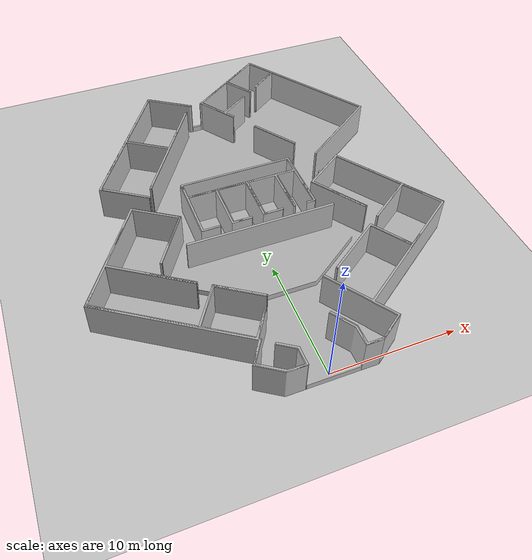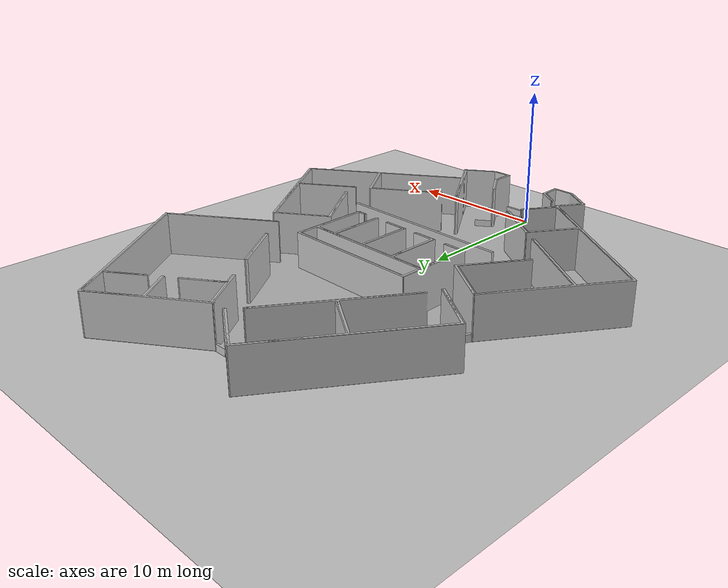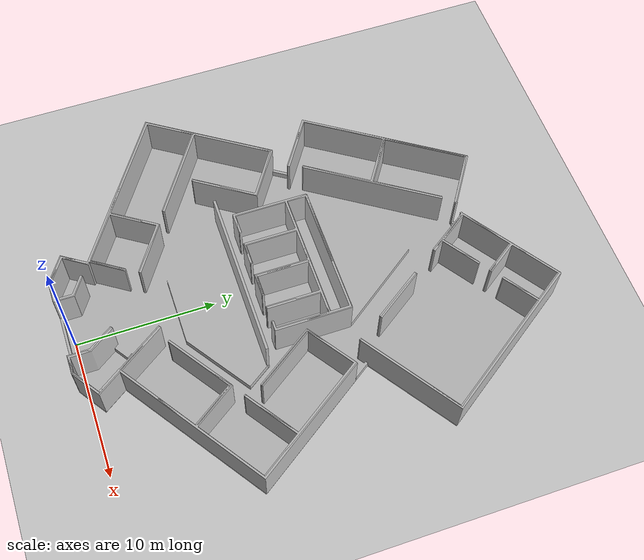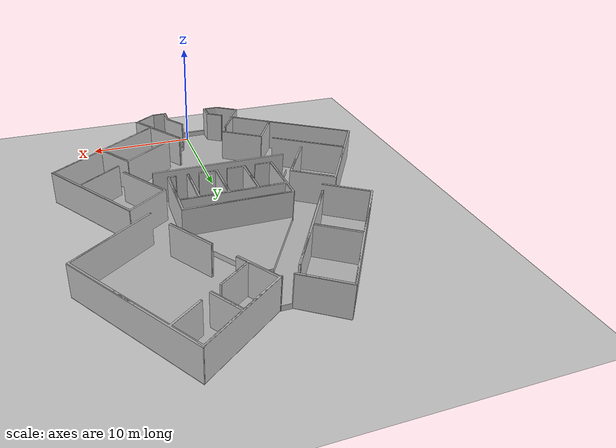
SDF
<sdf version="1.6">
  <world name="default">

    <scene>
      <ambient>0.4 0.4 0.4 1</ambient>
      <background>0.7 0.7 0.7 1</background>
      <shadows>true</shadows>
    </scene>

    <!-- A global light source -->
    <include>
      <uri>model://sun</uri>
    </include>

    <!-- A ground plane -->
    <include>
      <uri>model://ground_plane</uri>
    </include>
    <include>
      <uri>model://plano_posgrado</uri>
      <name>plano</name>
      <pose>-0.16 0 0 0 0 0</pose>
    </include>

    <physics type="ode">
      <real_time_update_rate>1000.0</real_time_update_rate>
      <max_step_size>0.001</max_step_size>
      <real_time_factor>1</real_time_factor>
      <ode>
        <solver>
          <type>quick</type>
          <iters>150</iters>
          <precon_iters>0</precon_iters>
          <sor>1.400000</sor>
          <use_dynamic_moi_rescaling>1</use_dynamic_moi_rescaling>
        </solver>
        <constraints>
          <cfm>0.00001</cfm>
          <erp>0.2</erp>
          <contact_max_correcting_vel>2000.000000</contact_max_correcting_vel>
          <contact_surface_layer>0.01000</contact_surface_layer>
        </constraints>
      </ode>
    </physics>
  </world>

</sdf>

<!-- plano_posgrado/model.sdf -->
<sdf version="1.6">
  <model name="plano">

<static>true</static>
    <link name="pared">
 <pose>8.934026 32.769393 0.14 0 0 0</pose>
      <collision name="collision">
        <geometry>
          <mesh>
            <scale>1.0 1.0 1.0</scale>
            <uri>model://plano_posgrado/meshes/pared.STL</uri>
<pose>0 0 0 0 0 0</pose>
          </mesh>
           <surface>
            <friction>
              <ode>
                <mu>1.2</mu>
                <mu2>1.2</mu2>
              </ode>
            </friction>
          </surface>
        </geometry>
      </collision>
      <visual name="visual">
        <geometry>
          <mesh>
            <scale>1.0 1.0 1.0</scale>
            <uri>model://plano_posgrado/meshes/pared.dae</uri>
	    <pose>0 0 0 0 0 0</pose>
          </mesh>
        </geometry>
      </visual>
    </link>

<static>true</static>
    <link name="pared_2">
 <pose>8.864026 32.735192 0.14 0 0 0</pose>
      <collision name="collision">
        <geometry>
          <mesh>
            <scale>1.0 1.0 1.0</scale>
            <uri>model://plano_posgrado/meshes/pared.STL</uri>
<pose>0 0 0 0 0 0</pose>
          </mesh>
           <surface>
            <friction>
              <ode>
                <mu>1.2</mu>
                <mu2>1.2</mu2>
              </ode>
            </friction>
          </surface>
        </geometry>
      </collision>
      <visual name="visual">
        <geometry>
          <mesh>
            <scale>1.0 1.0 1.0</scale>
            <uri>model://plano_posgrado/meshes/pared.dae</uri>
	    <pose>0 0 0 0 0 0</pose>
          </mesh>
        </geometry>
      </visual>
    </link>

<static>true</static>
    <link name="mural">
 <pose>8.934026 32.769393 0.164131 0 0 0</pose>
      <collision name="collision">
        <geometry>
          <mesh>
            <scale>1.0 1.0 1.0</scale>
            <uri>model://plano_posgrado/meshes/mural.STL</uri>
<pose>0 0 0 0 0 0</pose>
          </mesh>
           <surface>
            <friction>
              <ode>
                <mu>1.2</mu>
                <mu2>1.2</mu2>
              </ode>
            </friction>
          </surface>
        </geometry>
      </collision>
      <visual name="visual">
        <geometry>
          <mesh>
            <scale>1.0 1.0 1.0</scale>
            <uri>model://plano_posgrado/meshes/mural.dae</uri>
	    <pose>0 0 0 0 0 0</pose>
          </mesh>
        </geometry>
      </visual>
    </link>
<static>true</static>
    <link name="plano_piso">
 <pose>-14.632770 -0.902217 0.118 0 0 0</pose>
      <collision name="collision">
        <geometry>
          <mesh>
            <scale>1.0 1.0 1.0</scale>
            <uri>model://plano_posgrado/meshes/plano_piso.STL</uri>
<pose>0 0 0 0 0 0</pose>
          </mesh>
           <surface>
            <friction>
              <ode>
                <mu>1.2</mu>
                <mu2>1.2</mu2>
              </ode>
            </friction>
          </surface>
        </geometry>
      </collision>
      <visual name="visual">
        <geometry>
          <mesh>
            <scale>1.0 1.0 1.0</scale>
            <uri>model://plano_posgrado/meshes/plano_piso.dae</uri>
	    <pose>0 0 0 0 0 0</pose>
          </mesh>
        </geometry>
      </visual>
    </link>

  </model>
</sdf>
